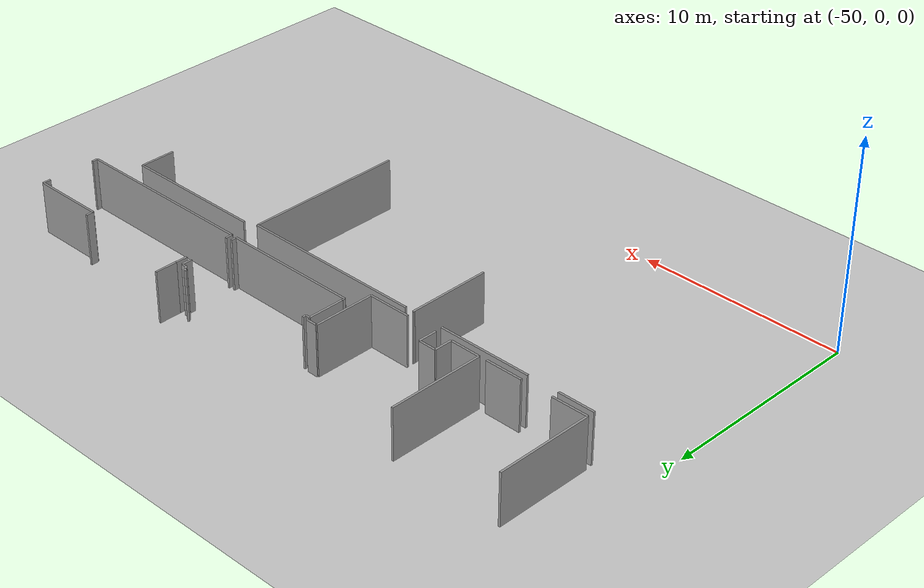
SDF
<sdf version="1.6">
 <world name="default">
  <model name="ground_plane">
   <static>1</static>
   <link name="link">
    <collision name="collision">
     <geometry><plane><normal>0 0 1</normal><size>100 100</size></plane></geometry>
     <surface><friction><ode><mu>100</mu><mu2>50</mu2></ode></friction></surface>
    </collision>
    <visual name="visual">
     <cast_shadows>0</cast_shadows>
     <geometry><plane><normal>0 0 1</normal><size>100 100</size></plane></geometry>
     <material>
      <script><uri>file://media/materials/scripts/gazebo.material</uri><name>Gazebo/Grey</name></script>
     </material>
    </visual>
   </link>
  </model>
  <model name="0510032267_A_40_1_101">
   <static>1</static>
   <link name="Wall_28">
    <collision name="Wall_28_Collision">
     <geometry><box><size>4.71943524867 0.1 2.5</size></box></geometry>
     <pose>2.35971762433 0 1.25 0 0 0</pose>
    </collision>
    <visual name="Wall_28_Visual">
     <pose>2.35971762433 0 1.25 0 0 0</pose>
     <geometry><box><size>4.71943524867 0.1 2.5</size></box></geometry>
     <material>
      <script><uri>file://media/materials/scripts/gazebo.material</uri><name>Gazebo/Grey</name></script>
      <ambient>1 1 1 1</ambient>
     </material>
    </visual>
    <pose>0.00559159735415 -20.6793790785 0 0 0 1.57079632679</pose>
   </link>
   <link name="Wall_31">
    <collision name="Wall_31_Collision">
     <geometry><box><size>1.8054505366 0.1 2.5</size></box></geometry>
     <pose>0.902725268301 0 1.25 0 0 0</pose>
    </collision>
    <visual name="Wall_31_Visual">
     <pose>0.902725268301 0 1.25 0 0 0</pose>
     <geometry><box><size>1.8054505366 0.1 2.5</size></box></geometry>
     <material>
      <script><uri>file://media/materials/scripts/gazebo.material</uri><name>Gazebo/Grey</name></script>
      <ambient>1 1 1 1</ambient>
     </material>
    </visual>
    <pose>5.13156139002 -20.6657813304 0 0 0 3.14159265359</pose>
   </link>
   <link name="Wall_32">
    <collision name="Wall_32_Collision">
     <geometry><box><size>1.76356597907 0.1 2.5</size></box></geometry>
     <pose>0.881782989534 0 1.25 0 0 0</pose>
    </collision>
    <visual name="Wall_32_Visual">
     <pose>0.881782989534 0 1.25 0 0 0</pose>
     <geometry><box><size>1.76356597907 0.1 2.5</size></box></geometry>
     <material>
      <script><uri>file://media/materials/scripts/gazebo.material</uri><name>Gazebo/Grey</name></script>
      <ambient>1 1 1 1</ambient>
     </material>
    </visual>
    <pose>1.7691051538 -20.6657813304 0 0 0 -3.13388220612</pose>
   </link>
   <link name="Wall_33">
    <collision name="Wall_33_Collision">
     <geometry><box><size>4.68918979025 0.1 2.5</size></box></geometry>
     <pose>2.34459489513 0 1.25 0 0 0</pose>
    </collision>
    <visual name="Wall_33_Visual">
     <pose>2.34459489513 0 1.25 0 0 0</pose>
     <geometry><box><size>4.68918979025 0.1 2.5</size></box></geometry>
     <material>
      <script><uri>file://media/materials/scripts/gazebo.material</uri><name>Gazebo/Grey</name></script>
      <ambient>1 1 1 1</ambient>
     </material>
    </visual>
    <pose>5.50823172088 -20.6491336201 0 0 0 1.57079632679</pose>
   </link>
   <link name="Wall_37">
    <collision name="Wall_37_Collision">
     <geometry><box><size>0.550772339385 0.1 2.5</size></box></geometry>
     <pose>0.275386169692 0 1.25 0 0 0</pose>
    </collision>
    <visual name="Wall_37_Visual">
     <pose>0.275386169692 0 1.25 0 0 0</pose>
     <geometry><box><size>0.550772339385 0.1 2.5</size></box></geometry>
     <material>
      <script><uri>file://media/materials/scripts/gazebo.material</uri><name>Gazebo/Grey</name></script>
      <ambient>1 1 1 1</ambient>
     </material>
    </visual>
    <pose>12.0717503606 -17.7040138773 0 0 0 3.14159265359</pose>
   </link>
   <link name="Wall_38">
    <collision name="Wall_38_Collision">
     <geometry><box><size>2.9856588236 0.1 2.5</size></box></geometry>
     <pose>1.4928294118 0 1.25 0 0 0</pose>
    </collision>
    <visual name="Wall_38_Visual">
     <pose>1.4928294118 0 1.25 0 0 0</pose>
     <geometry><box><size>2.9856588236 0.1 2.5</size></box></geometry>
     <material>
      <script><uri>file://media/materials/scripts/gazebo.material</uri><name>Gazebo/Grey</name></script>
      <ambient>1 1 1 1</ambient>
     </material>
    </visual>
    <pose>11.5209780212 -17.7040138773 0 0 0 -1.57079632679</pose>
   </link>
   <link name="Wall_39">
    <collision name="Wall_39_Collision">
     <geometry><box><size>2.08452207728 0.1 2.5</size></box></geometry>
     <pose>1.04226103864 0 1.25 0 0 0</pose>
    </collision>
    <visual name="Wall_39_Visual">
     <pose>1.04226103864 0 1.25 0 0 0</pose>
     <geometry><box><size>2.08452207728 0.1 2.5</size></box></geometry>
     <material>
      <script><uri>file://media/materials/scripts/gazebo.material</uri><name>Gazebo/Grey</name></script>
      <ambient>1 1 1 1</ambient>
     </material>
    </visual>
    <pose>11.5209780212 -20.6896727009 0 0 0 3.14159265359</pose>
   </link>
   <link name="Wall_40">
    <collision name="Wall_40_Collision">
     <geometry><box><size>0.908507488293 0.1 2.5</size></box></geometry>
     <pose>0.454253744146 0 1.25 0 0 0</pose>
    </collision>
    <visual name="Wall_40_Visual">
     <pose>0.454253744146 0 1.25 0 0 0</pose>
     <geometry><box><size>0.908507488293 0.1 2.5</size></box></geometry>
     <material>
      <script><uri>file://media/materials/scripts/gazebo.material</uri><name>Gazebo/Grey</name></script>
      <ambient>1 1 1 1</ambient>
     </material>
    </visual>
    <pose>7.88682098628 -20.6896727009 0 0 0 1.57079632679</pose>
   </link>
   <link name="Wall_41">
    <collision name="Wall_41_Collision">
     <geometry><box><size>0.867078835169 0.1 2.5</size></box></geometry>
     <pose>0.433539417584 0 1.25 0 0 0</pose>
    </collision>
    <visual name="Wall_41_Visual">
     <pose>0.433539417584 0 1.25 0 0 0</pose>
     <geometry><box><size>0.867078835169 0.1 2.5</size></box></geometry>
     <material>
      <script><uri>file://media/materials/scripts/gazebo.material</uri><name>Gazebo/Grey</name></script>
      <ambient>1 1 1 1</ambient>
     </material>
    </visual>
    <pose>7.88682098628 -19.7811652126 0 0 0 3.14159265359</pose>
   </link>
   <link name="Wall_42">
    <collision name="Wall_42_Collision">
     <geometry><box><size>0.880803665038 0.1 2.5</size></box></geometry>
     <pose>0.440401832519 0 1.25 0 0 0</pose>
    </collision>
    <visual name="Wall_42_Visual">
     <pose>0.440401832519 0 1.25 0 0 0</pose>
     <geometry><box><size>0.880803665038 0.1 2.5</size></box></geometry>
     <material>
      <script><uri>file://media/materials/scripts/gazebo.material</uri><name>Gazebo/Grey</name></script>
      <ambient>1 1 1 1</ambient>
     </material>
    </visual>
    <pose>7.01974215111 -19.7811652126 0 0 0 -1.57079632679</pose>
   </link>
   <link name="Wall_43">
    <collision name="Wall_43_Collision">
     <geometry><box><size>1.51156492568 0.1 2.5</size></box></geometry>
     <pose>0.75578246284 0 1.25 0 0 0</pose>
    </collision>
    <visual name="Wall_43_Visual">
     <pose>0.75578246284 0 1.25 0 0 0</pose>
     <geometry><box><size>1.51156492568 0.1 2.5</size></box></geometry>
     <material>
      <script><uri>file://media/materials/scripts/gazebo.material</uri><name>Gazebo/Grey</name></script>
      <ambient>1 1 1 1</ambient>
     </material>
    </visual>
    <pose>7.01974215111 -20.6619688777 0 0 0 3.13310118121</pose>
   </link>
   <link name="Wall_45">
    <collision name="Wall_45_Collision">
     <geometry><box><size>1.78562578235 0.1 2.5</size></box></geometry>
     <pose>0.892812891174 0 1.25 0 0 0</pose>
    </collision>
    <visual name="Wall_45_Visual">
     <pose>0.892812891174 0 1.25 0 0 0</pose>
     <geometry><box><size>1.78562578235 0.1 2.5</size></box></geometry>
     <material>
      <script><uri>file://media/materials/scripts/gazebo.material</uri><name>Gazebo/Grey</name></script>
      <ambient>1 1 1 1</ambient>
     </material>
    </visual>
    <pose>0.0 -21.0529994472 0 0 0 0.0</pose>
   </link>
   <link name="Wall_46">
    <collision name="Wall_46_Collision">
     <geometry><box><size>4.58383901283 0.1 2.5</size></box></geometry>
     <pose>2.29191950641 0 1.25 0 0 0</pose>
    </collision>
    <visual name="Wall_46_Visual">
     <pose>2.29191950641 0 1.25 0 0 0</pose>
     <geometry><box><size>4.58383901283 0.1 2.5</size></box></geometry>
     <material>
      <script><uri>file://media/materials/scripts/gazebo.material</uri><name>Gazebo/Grey</name></script>
      <ambient>1 1 1 1</ambient>
     </material>
    </visual>
    <pose>3.33818362043 -21.0529994472 0 0 0 0.0</pose>
   </link>
   <link name="Wall_47">
    <collision name="Wall_47_Collision">
     <geometry><box><size>0.062270061444 0.1 2.5</size></box></geometry>
     <pose>0.031135030722 0 1.25 0 0 0</pose>
    </collision>
    <visual name="Wall_47_Visual">
     <pose>0.031135030722 0 1.25 0 0 0</pose>
     <geometry><box><size>0.062270061444 0.1 2.5</size></box></geometry>
     <material>
      <script><uri>file://media/materials/scripts/gazebo.material</uri><name>Gazebo/Grey</name></script>
      <ambient>1 1 1 1</ambient>
     </material>
    </visual>
    <pose>9.44090380546 -21.0529994472 0 0 0 0.0</pose>
   </link>
   <link name="Wall_48">
    <collision name="Wall_48_Collision">
     <geometry><box><size>4.06013508791 0.1 2.5</size></box></geometry>
     <pose>2.03006754395 0 1.25 0 0 0</pose>
    </collision>
    <visual name="Wall_48_Visual">
     <pose>2.03006754395 0 1.25 0 0 0</pose>
     <geometry><box><size>4.06013508791 0.1 2.5</size></box></geometry>
     <material>
      <script><uri>file://media/materials/scripts/gazebo.material</uri><name>Gazebo/Grey</name></script>
      <ambient>1 1 1 1</ambient>
     </material>
    </visual>
    <pose>9.50317386691 -21.0529994472 0 0 0 -1.57079632679</pose>
   </link>
   <link name="Wall_53">
    <collision name="Wall_53_Collision">
     <geometry><box><size>8.8873356674 0.1 2.5</size></box></geometry>
     <pose>4.4436678337 0 1.25 0 0 0</pose>
    </collision>
    <visual name="Wall_53_Visual">
     <pose>4.4436678337 0 1.25 0 0 0</pose>
     <geometry><box><size>8.8873356674 0.1 2.5</size></box></geometry>
     <material>
      <script><uri>file://media/materials/scripts/gazebo.material</uri><name>Gazebo/Grey</name></script>
      <ambient>1 1 1 1</ambient>
     </material>
    </visual>
    <pose>9.92864359286 -21.0636743149 0 0 0 0.0</pose>
   </link>
   <link name="Wall_54">
    <collision name="Wall_54_Collision">
     <geometry><box><size>7.7695245236 0.1 2.5</size></box></geometry>
     <pose>3.8847622618 0 1.25 0 0 0</pose>
    </collision>
    <visual name="Wall_54_Visual">
     <pose>3.8847622618 0 1.25 0 0 0</pose>
     <geometry><box><size>7.7695245236 0.1 2.5</size></box></geometry>
     <material>
      <script><uri>file://media/materials/scripts/gazebo.material</uri><name>Gazebo/Grey</name></script>
      <ambient>1 1 1 1</ambient>
     </material>
    </visual>
    <pose>18.8159792603 -21.0636743149 0 0 0 -1.57079632679</pose>
   </link>
   <link name="Wall_78">
    <collision name="Wall_78_Collision">
     <geometry><box><size>1.75499907866 0.1 2.5</size></box></geometry>
     <pose>0.877499539329 0 1.25 0 0 0</pose>
    </collision>
    <visual name="Wall_78_Visual">
     <pose>0.877499539329 0 1.25 0 0 0</pose>
     <geometry><box><size>1.75499907866 0.1 2.5</size></box></geometry>
     <material>
      <script><uri>file://media/materials/scripts/gazebo.material</uri><name>Gazebo/Grey</name></script>
      <ambient>1 1 1 1</ambient>
     </material>
    </visual>
    <pose>12.1011062467 -19.6307004111 0 0 0 1.57079632679</pose>
   </link>
   <link name="Wall_79">
    <collision name="Wall_79_Collision">
     <geometry><box><size>0.216166070441 0.1 2.5</size></box></geometry>
     <pose>0.108083035221 0 1.25 0 0 0</pose>
    </collision>
    <visual name="Wall_79_Visual">
     <pose>0.108083035221 0 1.25 0 0 0</pose>
     <geometry><box><size>0.216166070441 0.1 2.5</size></box></geometry>
     <material>
      <script><uri>file://media/materials/scripts/gazebo.material</uri><name>Gazebo/Grey</name></script>
      <ambient>1 1 1 1</ambient>
     </material>
    </visual>
    <pose>12.1011062467 -17.8757013325 0 0 0 0.0</pose>
   </link>
   <link name="Wall_80">
    <collision name="Wall_80_Collision">
     <geometry><box><size>0.17194161864 0.1 2.5</size></box></geometry>
     <pose>0.0859708093202 0 1.25 0 0 0</pose>
    </collision>
    <visual name="Wall_80_Visual">
     <pose>0.0859708093202 0 1.25 0 0 0</pose>
     <geometry><box><size>0.17194161864 0.1 2.5</size></box></geometry>
     <material>
      <script><uri>file://media/materials/scripts/gazebo.material</uri><name>Gazebo/Grey</name></script>
      <ambient>1 1 1 1</ambient>
     </material>
    </visual>
    <pose>12.3172723171 -17.8757013325 0 0 0 1.57079632679</pose>
   </link>
   <link name="Wall_99">
    <collision name="Wall_99_Collision">
     <geometry><box><size>0.178649336968 0.1 2.5</size></box></geometry>
     <pose>0.0893246684841 0 1.25 0 0 0</pose>
    </collision>
    <visual name="Wall_99_Visual">
     <pose>0.0893246684841 0 1.25 0 0 0</pose>
     <geometry><box><size>0.178649336968 0.1 2.5</size></box></geometry>
     <material>
      <script><uri>file://media/materials/scripts/gazebo.material</uri><name>Gazebo/Grey</name></script>
      <ambient>1 1 1 1</ambient>
     </material>
    </visual>
    <pose>18.223142859 -16.5968776012 0 0 0 -0.950629533279</pose>
   </link>
   <link name="Wall_100">
    <collision name="Wall_100_Collision">
     <geometry><box><size>0.194734912799 0.1 2.5</size></box></geometry>
     <pose>0.0973674563997 0 1.25 0 0 0</pose>
    </collision>
    <visual name="Wall_100_Visual">
     <pose>0.0973674563997 0 1.25 0 0 0</pose>
     <geometry><box><size>0.194734912799 0.1 2.5</size></box></geometry>
     <material>
      <script><uri>file://media/materials/scripts/gazebo.material</uri><name>Gazebo/Grey</name></script>
      <ambient>1 1 1 1</ambient>
     </material>
    </visual>
    <pose>18.3269686553 -16.7422591324 0 0 0 -0.588002603548</pose>
   </link>
   <link name="Wall_101">
    <collision name="Wall_101_Collision">
     <geometry><box><size>0.203625587737 0.1 2.5</size></box></geometry>
     <pose>0.101812793869 0 1.25 0 0 0</pose>
    </collision>
    <visual name="Wall_101_Visual">
     <pose>0.101812793869 0 1.25 0 0 0</pose>
     <geometry><box><size>0.203625587737 0.1 2.5</size></box></geometry>
     <material>
      <script><uri>file://media/materials/scripts/gazebo.material</uri><name>Gazebo/Grey</name></script>
      <ambient>1 1 1 1</ambient>
     </material>
    </visual>
    <pose>18.4889978968 -16.8502786268 0 0 0 -0.0199723751552</pose>
   </link>
   <link name="Wall_102">
    <collision name="Wall_102_Collision">
     <geometry><box><size>0.486087724538 0.1 2.5</size></box></geometry>
     <pose>0.243043862269 0 1.25 0 0 0</pose>
    </collision>
    <visual name="Wall_102_Visual">
     <pose>0.243043862269 0 1.25 0 0 0</pose>
     <geometry><box><size>0.486087724538 0.1 2.5</size></box></geometry>
     <material>
      <script><uri>file://media/materials/scripts/gazebo.material</uri><name>Gazebo/Grey</name></script>
      <ambient>1 1 1 1</ambient>
     </material>
    </visual>
    <pose>18.6925828732 -16.854345243 0 0 0 -1.57079632679</pose>
   </link>
   <link name="Wall_103">
    <collision name="Wall_103_Collision">
     <geometry><box><size>0.282502748143 0.1 2.5</size></box></geometry>
     <pose>0.141251374072 0 1.25 0 0 0</pose>
    </collision>
    <visual name="Wall_103_Visual">
     <pose>0.141251374072 0 1.25 0 0 0</pose>
     <geometry><box><size>0.282502748143 0.1 2.5</size></box></geometry>
     <material>
      <script><uri>file://media/materials/scripts/gazebo.material</uri><name>Gazebo/Grey</name></script>
      <ambient>1 1 1 1</ambient>
     </material>
    </visual>
    <pose>18.6925828732 -19.4924354584 0 0 0 -1.57079632679</pose>
   </link>
   <link name="Wall_104">
    <collision name="Wall_104_Collision">
     <geometry><box><size>6.5956703245 0.1 2.5</size></box></geometry>
     <pose>3.29783516225 0 1.25 0 0 0</pose>
    </collision>
    <visual name="Wall_104_Visual">
     <pose>3.29783516225 0 1.25 0 0 0</pose>
     <geometry><box><size>6.5956703245 0.1 2.5</size></box></geometry>
     <material>
      <script><uri>file://media/materials/scripts/gazebo.material</uri><name>Gazebo/Grey</name></script>
      <ambient>1 1 1 1</ambient>
     </material>
    </visual>
    <pose>18.6925828732 -19.7749382065 0 0 0 3.14159265359</pose>
   </link>
   <link name="Wall_105">
    <collision name="Wall_105_Collision">
     <geometry><box><size>0.144298748161 0.1 2.5</size></box></geometry>
     <pose>0.0721493740804 0 1.25 0 0 0</pose>
    </collision>
    <visual name="Wall_105_Visual">
     <pose>0.0721493740804 0 1.25 0 0 0</pose>
     <geometry><box><size>0.144298748161 0.1 2.5</size></box></geometry>
     <material>
      <script><uri>file://media/materials/scripts/gazebo.material</uri><name>Gazebo/Grey</name></script>
      <ambient>1 1 1 1</ambient>
     </material>
    </visual>
    <pose>12.0969125487 -19.7749382065 0 0 0 1.54172962559</pose>
   </link>
   <link name="Wall_107">
    <collision name="Wall_107_Collision">
     <geometry><box><size>6.81056557736 0.1 2.5</size></box></geometry>
     <pose>3.40528278868 0 1.25 0 0 0</pose>
    </collision>
    <visual name="Wall_107_Visual">
     <pose>3.40528278868 0 1.25 0 0 0</pose>
     <geometry><box><size>6.81056557736 0.1 2.5</size></box></geometry>
     <material>
      <script><uri>file://media/materials/scripts/gazebo.material</uri><name>Gazebo/Grey</name></script>
      <ambient>1 1 1 1</ambient>
     </material>
    </visual>
    <pose>19.4179655481 -20.8477624079 0 0 0 0.0</pose>
   </link>
   <link name="Wall_108">
    <collision name="Wall_108_Collision">
     <geometry><box><size>1.70708925587 0.1 2.5</size></box></geometry>
     <pose>0.853544627936 0 1.25 0 0 0</pose>
    </collision>
    <visual name="Wall_108_Visual">
     <pose>0.853544627936 0 1.25 0 0 0</pose>
     <geometry><box><size>1.70708925587 0.1 2.5</size></box></geometry>
     <material>
      <script><uri>file://media/materials/scripts/gazebo.material</uri><name>Gazebo/Grey</name></script>
      <ambient>1 1 1 1</ambient>
     </material>
    </visual>
    <pose>26.2285311255 -20.8477624079 0 0 0 -1.57079632679</pose>
   </link>
   <link name="Wall_168">
    <collision name="Wall_168_Collision">
     <geometry><box><size>1.06113267971 0.1 2.5</size></box></geometry>
     <pose>0.530566339855 0 1.25 0 0 0</pose>
    </collision>
    <visual name="Wall_168_Visual">
     <pose>0.530566339855 0 1.25 0 0 0</pose>
     <geometry><box><size>1.06113267971 0.1 2.5</size></box></geometry>
     <material>
      <script><uri>file://media/materials/scripts/gazebo.material</uri><name>Gazebo/Grey</name></script>
      <ambient>1 1 1 1</ambient>
     </material>
    </visual>
    <pose>18.9997394824 -16.7700900374 0 0 0 1.57079632679</pose>
   </link>
   <link name="Wall_183">
    <collision name="Wall_183_Collision">
     <geometry><box><size>0.360022620553 0.1 2.5</size></box></geometry>
     <pose>0.180011310276 0 1.25 0 0 0</pose>
    </collision>
    <visual name="Wall_183_Visual">
     <pose>0.180011310276 0 1.25 0 0 0</pose>
     <geometry><box><size>0.360022620553 0.1 2.5</size></box></geometry>
     <material>
      <script><uri>file://media/materials/scripts/gazebo.material</uri><name>Gazebo/Grey</name></script>
      <ambient>1 1 1 1</ambient>
     </material>
    </visual>
    <pose>24.5954034528 -16.4758957675 0 0 0 -1.57079632679</pose>
   </link>
   <link name="Wall_184">
    <collision name="Wall_184_Collision">
     <geometry><box><size>3.50021286194 0.1 2.5</size></box></geometry>
     <pose>1.75010643097 0 1.25 0 0 0</pose>
    </collision>
    <visual name="Wall_184_Visual">
     <pose>1.75010643097 0 1.25 0 0 0</pose>
     <geometry><box><size>3.50021286194 0.1 2.5</size></box></geometry>
     <material>
      <script><uri>file://media/materials/scripts/gazebo.material</uri><name>Gazebo/Grey</name></script>
      <ambient>1 1 1 1</ambient>
     </material>
    </visual>
    <pose>24.5954034528 -16.8359183881 0 0 0 0.0</pose>
   </link>
   <link name="Wall_185">
    <collision name="Wall_185_Collision">
     <geometry><box><size>0.365741299665 0.1 2.5</size></box></geometry>
     <pose>0.182870649833 0 1.25 0 0 0</pose>
    </collision>
    <visual name="Wall_185_Visual">
     <pose>0.182870649833 0 1.25 0 0 0</pose>
     <geometry><box><size>0.365741299665 0.1 2.5</size></box></geometry>
     <material>
      <script><uri>file://media/materials/scripts/gazebo.material</uri><name>Gazebo/Grey</name></script>
      <ambient>1 1 1 1</ambient>
     </material>
    </visual>
    <pose>28.0956163148 -16.8359183881 0 0 0 -1.57079632679</pose>
   </link>
   <link name="Wall_186">
    <collision name="Wall_186_Collision">
     <geometry><box><size>0.277165314305 0.1 2.5</size></box></geometry>
     <pose>0.138582657152 0 1.25 0 0 0</pose>
    </collision>
    <visual name="Wall_186_Visual">
     <pose>0.138582657152 0 1.25 0 0 0</pose>
     <geometry><box><size>0.277165314305 0.1 2.5</size></box></geometry>
     <material>
      <script><uri>file://media/materials/scripts/gazebo.material</uri><name>Gazebo/Grey</name></script>
      <ambient>1 1 1 1</ambient>
     </material>
    </visual>
    <pose>28.0956163148 -19.5095914957 0 0 0 -1.57079632679</pose>
   </link>
   <link name="Wall_187">
    <collision name="Wall_187_Collision">
     <geometry><box><size>9.10807668113 0.1 2.5</size></box></geometry>
     <pose>4.55403834057 0 1.25 0 0 0</pose>
    </collision>
    <visual name="Wall_187_Visual">
     <pose>4.55403834057 0 1.25 0 0 0</pose>
     <geometry><box><size>9.10807668113 0.1 2.5</size></box></geometry>
     <material>
      <script><uri>file://media/materials/scripts/gazebo.material</uri><name>Gazebo/Grey</name></script>
      <ambient>1 1 1 1</ambient>
     </material>
    </visual>
    <pose>28.0956163148 -19.78675681 0 0 0 3.14159265359</pose>
   </link>
   <link name="Wall_188">
    <collision name="Wall_188_Collision">
     <geometry><box><size>0.335877086524 0.1 2.5</size></box></geometry>
     <pose>0.167938543262 0 1.25 0 0 0</pose>
    </collision>
    <visual name="Wall_188_Visual">
     <pose>0.167938543262 0 1.25 0 0 0</pose>
     <geometry><box><size>0.335877086524 0.1 2.5</size></box></geometry>
     <material>
      <script><uri>file://media/materials/scripts/gazebo.material</uri><name>Gazebo/Grey</name></script>
      <ambient>1 1 1 1</ambient>
     </material>
    </visual>
    <pose>18.9875396336 -19.78675681 0 0 0 1.57079632679</pose>
   </link>
   <link name="Wall_189">
    <collision name="Wall_189_Collision">
     <geometry><box><size>0.558022294316 0.1 2.5</size></box></geometry>
     <pose>0.279011147158 0 1.25 0 0 0</pose>
    </collision>
    <visual name="Wall_189_Visual">
     <pose>0.279011147158 0 1.25 0 0 0</pose>
     <geometry><box><size>0.558022294316 0.1 2.5</size></box></geometry>
     <material>
      <script><uri>file://media/materials/scripts/gazebo.material</uri><name>Gazebo/Grey</name></script>
      <ambient>1 1 1 1</ambient>
     </material>
    </visual>
    <pose>18.9875396336 -17.3279789553 0 0 0 1.54893193002</pose>
   </link>
   <pose>-47.8 33.6752466975 0 0 0 0</pose>
  </model>
 </world>
</sdf>
